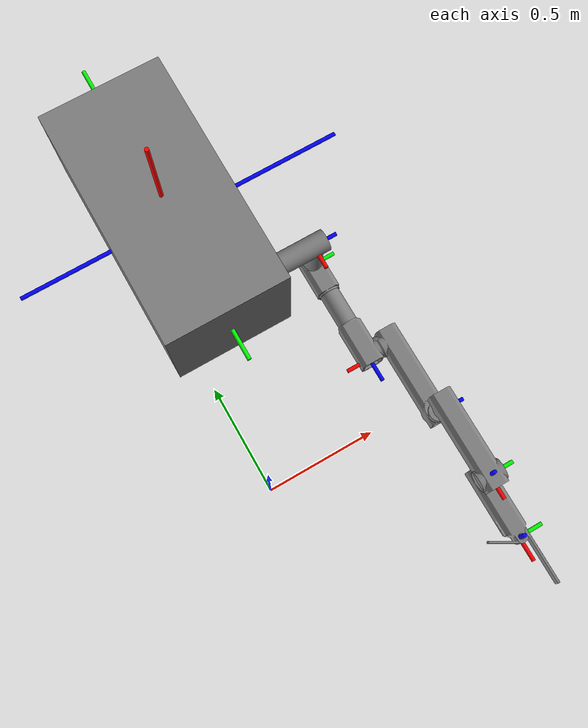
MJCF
<?xml version="1.0"?>
<mujoco model="spacerobot">
    <compiler angle="radian" coordinate="local" eulerseq="xyz" />
    <option cone="elliptic" gravity="0 0 0" impratio="5" timestep="0.01" tolerance="1e-10" />
    <default class="main">
        <joint damping="0" armature="1" />
        <geom condim="4" solimp="0.99 0.99 0.01" solref="0.01 1" />
        <default class="arm1">
            <joint damping="0" />
        </default>
        <default class="arm2">
            <joint damping="0" />
        </default>
    </default>

    <include file="common/visual.xml" />
    <!-- back ground-->
    <include file="common/skybox.xml" />
    <include file="common/materials.xml" />

    <include file="asset_legacy.xml" />

    <worldbody>
        <!--geom name="floor" size="5 5 .2" type="plane" material="grid" /-->
        <camera mode="targetbody" name="cam_to_dockingring" pos="0 0 0" target="chasersat" />
        <light dir="0 0 -1" directional="true" name="light1" pos="0 -1 6" />
        <light dir="0 0 -1" directional="true" name="light2" pos="0 1 6" />

        <body name="chasersat" pos="0.2 1.3 0" euler="0 1.57 0">
            <freejoint name="chasersat:joint" />
            <geom name="chasersat" mass="419.8441" pos="0 0 0"  size="0.3 0.6 0.3" type="box" />
            <site name="b_frame:x" pos="0.0618 0 0" size="0.01 0.818" type="cylinder" rgba="1 0 0 1" euler="0 1.5707963 0" />
            <site name="b_frame:y" pos="0 0.0618 0" size="0.01 0.818" type="cylinder" rgba="0 1 0 1" euler="-1.5707963 0 0" />
            <site name="b_frame:z" pos="0 0 0.0618" size="0.01 0.818" type="cylinder" rgba="0 0 1 1" />
            <body name="arm" pos="0.11855 -0.4 0.29550" euler="0 0 0">
                <include file="arm_smrl.xml" />
            </body>
        </body>
    </worldbody>

    <actuator>

        <general group="1" biasprm="0 0 -100" biastype="affine" ctrllimited="true" ctrlrange="-3.14 3.14" forcelimited="true" forcerange="-150 150" gainprm="100 0 0" joint="arm:shoulder_pan_joint" name="arm:shoulder_pan_T" />
        <general group="1" biasprm="0 0 -100" biastype="affine" ctrllimited="true" ctrlrange="-3.14 3.14" forcelimited="true" forcerange="-150 150" gainprm="100 0 0" joint="arm:shoulder_lift_joint" name="arm:shoulder_lift_T" />
        <general group="1" biasprm="0 0 -100" biastype="affine" ctrllimited="true" ctrlrange="-3.14 3.14" forcelimited="true" forcerange="-150 150" gainprm="100 0 0" joint="arm:elbow_joint" name="arm:elbow_T" />
        <general group="1" biasprm="0 0 -50" biastype="affine" ctrllimited="true" ctrlrange="-3.14 3.14" forcelimited="true" forcerange="-28 28" gainprm="50 0 0" joint="arm:wrist_1_joint" name="arm:wrist_1_T" />
        <general group="1" biasprm="0 0 -50" biastype="affine" ctrllimited="true" ctrlrange="-3.14 3.14" forcelimited="true" forcerange="-28 28" gainprm="50 0 0" joint="arm:wrist_2_joint" name="arm:wrist_2_T" />
        <general group="1" biasprm="0 0 -50" biastype="affine" ctrllimited="true" ctrlrange="-3.14 3.14" forcelimited="true" forcerange="-28 28" gainprm="50 0 0" joint="arm:wrist_3_joint" name="arm:wrist_3_T" />

    </actuator>

    <sensor>
        <actuatorfrc name="shoulder_pan_P_frc" actuator="arm:shoulder_pan_T" />
        <actuatorfrc name="shoulder_lift_P_frc" actuator="arm:shoulder_lift_T" />
        <actuatorfrc name="forearm_P_frc" actuator="arm:elbow_T" />
        <actuatorfrc name="wrist_1_P_frc" actuator="arm:wrist_1_T" />
        <actuatorfrc name="wrist_2_P_frc" actuator="arm:wrist_2_T" />
        <actuatorfrc name="wrist_3_P_frc" actuator="arm:wrist_3_T" />
    </sensor>

</mujoco>

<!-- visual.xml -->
<mujoco>
    <visual>
        <headlight ambient=".4 .4 .4" diffuse=".8 .8 .8" specular="0.1 0.1 0.1" />
        <map znear=".01" />
        <quality shadowsize="2048" />
    </visual>
</mujoco>

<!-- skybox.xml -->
<mujoco>
    <asset>
        <texture name="skybox" type="skybox" builtin="gradient" rgb1=".4 .6 .8" rgb2="0 0 0" width="800" height="800" mark="random" markrgb="1 1 1" />
    </asset>
</mujoco>

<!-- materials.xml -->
<!--
Common textures, colors and materials to be used throughout this suite. Some
materials such as xxx_highlight are activated on occurence of certain events,
for example receiving a positive reward.
-->
<mujoco>
    <asset>
        <texture name="grid" type="2d" builtin="checker" rgb1=".1 .2 .3" rgb2=".2 .3 .4" width="300" height="300" mark="edge" markrgb=".2 .3 .4" />
        <material name="grid" texture="grid" texrepeat="1 1" texuniform="true" reflectance=".2" />
        <material name="self" rgba=".7 .5 .3 1" />
        <material name="self_default" rgba=".7 .5 .3 1" />
        <material name="self_highlight" rgba="0 .5 .3 1" />
        <material name="effector" rgba=".7 .4 .2 1" />
        <material name="effector_default" rgba=".7 .4 .2 1" />
        <material name="effector_highlight" rgba="0 .5 .3 1" />
        <material name="decoration" rgba=".3 .5 .7 1" />
        <material name="eye" rgba="0 .2 1 1" />
        <material name="target" rgba=".6 .3 .3 1" />
        <material name="target_default" rgba=".6 .3 .3 1" />
        <material name="target_highlight" rgba=".6 .3 .3 .4" />
    </asset>
</mujoco>

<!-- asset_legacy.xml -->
<mujoco>
    <asset>
        <mesh name="link2" file="stls/legacy/link2.stl" />
        <mesh name="link3" file="stls/legacy/link3.stl" />
        <mesh name="link4" file="stls/legacy/link4.stl" />
        <mesh name="link5" file="stls/legacy/link5.stl" />
        <mesh name="shaft_base" file="stls/legacy/shaft_base.stl" />
        <mesh name="ee1" file="stls/legacy/ee1.stl" />
        <mesh name="ee2" file="stls/legacy/ee2.stl" />
        <mesh name="shaft1" file="stls/legacy/shaft.stl" />
        <mesh name="shaft2" file="stls/legacy/shaft2.stl" />
        <mesh name="target" file="stls/KOMPSAT-1.stl"/>
        <mesh name="v_base" file="stls/v_base.stl" />
        <mesh name="v_shoulder" file="stls/v_shoulder.stl" />
        <mesh name="v_upperarm" file="stls/v_upperarm.stl" />
        <mesh name="v_forearm" file="stls/v_forearm.stl" />
        <mesh name="v_wrist1" file="stls/v_wrist1.stl" />
        <mesh name="v_wrist2" file="stls/v_wrist2.stl" />
        <mesh name="v_wrist3" file="stls/v_wrist3.stl" />
        <mesh name="cube" file="stls/cube.stl" />
    </asset>
</mujoco>

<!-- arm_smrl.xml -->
<!-- unit quat in mujoco xml is "1 0 0 0"  [ w, x, y, z]-->
<!-- euler sequence xzy-->
<mujoco>
    <body name="base_link" pos="0 0 0" euler="0 0 -1.57">
        <!--base_link is fixed in the base so that the motion of the arm will affect the base-->

        <inertial pos="0 0 0.142137" mass="0.776" diaginertia="0.08871355 0.019580255 0.087662" />
        <site name="base_frame:x" pos="0.0618 0 0" size="0.01 0.0618" type="cylinder" rgba="1 0 0 1" euler="0 1.5707963 0" />
        <site name="base_frame:y" pos="0 0.0618 0" size="0.01 0.0618" type="cylinder" rgba="0 1 0 1" euler="-1.5707963 0 0" />
        <site name="base_frame:z" pos="0 0 0.0618" size="0.01 0.0618" type="cylinder" rgba="0 0 1 1" />

        <!-- joint 1 : a joint creates motion degrees of freedom between the body where it is defined and the body's parent
            joint 1 defines the relation of the motions between link1 and link0-->
        <body name="shoulder_link" pos="0 0 0.240" euler="0 0 0 ">
        <geom name="v_base_link" pos=" 0 0 -0.240" type="mesh" group="1" mesh="shaft_base" euler="1.57 1.57 0" />
        <geom name="v_shoulder_link" type="mesh" group="1" mesh="shaft1" euler="-1.57 0 0" />

        <site name="1_frame:x" pos="0.0618 0 0" size="0.01 0.0618" type="cylinder" rgba="1 0 0 1" euler="0 1.5707963 0" />
        <site name="1_frame:y" pos="0 0.0618 0" size="0.01 0.0618" type="cylinder" rgba="0 1 0 1" euler="-1.5707963 0 0" />
        <site name="1_frame:z" pos="0 0 0.0618" size="0.01 0.0618" type="cylinder" rgba="0 0 1 1" />
        <inertial pos="-0.064465 0 0" mass="3.7" diaginertia="0.0067 0.0064 0.0067" />
            <!-- inertial should be modified-->
            <joint class="arm1" name="arm:shoulder_pan_joint" axis="0 0 1" pos="0 -0.02561 0" />
            <body name="upper_arm_link" pos="0 0.277 0" euler="-1.57 0 3.14">
            <site name="2_frame:x" pos="0.0618 0 0" size="0.01 0.0618" type="cylinder" rgba="1 0 0 1" euler="0 1.5707963 0" />
            <site name="2_frame:y" pos="0 0.0618 0" size="0.01 0.0618" type="cylinder" rgba="0 1 0 1" euler="-1.5707963 0 0" />
            <site name="2_frame:z" pos="0 0 0.0618" size="0.01 0.0618" type="cylinder" rgba="0 0 1 1" />

            <inertial pos="0.0 0 0.0" mass="1" diaginertia="1 1 1" />
            <joint class="arm1" name="arm:shoulder_lift_joint" axis="0 0 1" pos="0 0 0" />
            <geom name="v_upper_arm_link" type="mesh" group="1" mesh="link2" pos="0.064 0 0" euler="0 -1.57 0" />
            <geom name="v_upper_arm_link_1" type="mesh" group="1" mesh="shaft1" pos="-0.145 0 0" euler="0 -1.57 0" />

                <body name="forearm_link" pos="-0.55 0 0" euler="1.57 -1.57 0">
                    <inertial pos="0.11993 0 0.0265" mass="2.275" fullinertia="0.0025 0.0551 0.0546 0 0.0034 0" />
                    <joint class="arm1" name="arm:elbow_joint" pos="0 0 0" axis="0 0 1" />
                    <geom name="v_forearm_link" type="mesh" group="1" mesh="link2" pos="0 0 0.032 " euler="3.14 0 0" />
                    <geom name="v_forearm_link_1" type="mesh" group="1" mesh="shaft2" pos="-0.0906 0 -0.032" euler="0 1.57 0" />
                    <site name="3_frame:x" pos="0.0618 0 0" size="0.01 0.0618" type="cylinder" rgba="1 0 0 1" euler="0 1.5707963 0" />
                    <site name="3_frame:y" pos="0 0.0618 0" size="0.01 0.0618" type="cylinder" rgba="0 1 0 1" euler="-1.5707963 0 0" />
                    <site name="3_frame:z" pos="0 0 0.0618" size="0.01 0.0618" type="cylinder" rgba="0 0 1 1" />
                    <body name="wrist_1_link" pos="-0.162 0 0.390 " euler="0 -1.5707963 -1.5707963">

                    <inertial pos="0.0 0 0.0" mass="1" diaginertia="1 1 1" />
                    <joint class="arm2" name="arm:wrist_1_joint" pos="0 -0.390 0" axis="0 0 1" />
                    <geom name="v_wrist_1_link" type="mesh" group="1" mesh="link3" pos="0 -0.478 -0.025 " euler="-1.57 0 -1.57"/>
                    <geom name="v_wrist_1_link_1" type="mesh" group="1" mesh="shaft2" pos="0.039 0 -0.025" euler="0 1.57 0"/>
                    <site name="4_frame:x" pos="0.0618 0 0" size="0.01 0.0618" type="cylinder" rgba="1 0 0 1" euler="0 1.5707963 0" />
                    <site name="4_frame:y" pos="0 0.0618 0" size="0.01 0.0618" type="cylinder" rgba="0 1 0 1" euler="-1.5707963 0 0" />
                    <site name="4_frame:z" pos="0 0 0.0618" size="0.01 0.0618" type="cylinder" rgba="0 0 1 1" />
                        <body name="wrist_2_link" pos="0.160 0.370 0" euler="1.5707963 1.5707963 0">
                            <inertial pos="0 0.0018 0.01634" mass="1" diaginertia="0.0012 0.0012 0.0009" />
                            <joint class="arm2" name="arm:wrist_2_joint" pos="-0.370 0 0" axis="0 0 1" />
                            <geom name="v_wrist_2_link" type="mesh" group="1" mesh="link4" pos="0 0 0" euler="0 0 0" />
                            <geom name="v_wrist_2_link_1" type="mesh" group="1" mesh="shaft2" pos="0 0 -0.0385 " euler="0 0 0" />
                            <site name="5_frame:x" pos="0.0618 0 0" size="0.01 0.0618" type="cylinder" rgba="1 0 0 1" euler="0 1.5707963 0" />
                            <site name="5_frame:y" pos="0 0.0618 0" size="0.01 0.0618" type="cylinder" rgba="0 1 0 1" euler="-1.5707963 0 0" />
                            <site name="5_frame:z" pos="0 0 0.0618" size="0.01 0.0618" type="cylinder" rgba="0 0 1 1" />

                            <body name="wrist_3_link" pos="0.305 0 -0.160">
                                <inertial pos="0 0 -0.01159" mass="1" diaginertia="0.0000884489143 0.0000884489143 0.000138534912" />
                                <joint class="arm2" name="arm:wrist_3_joint" pos="-0.305 0 0" axis="0 0 1" />
                                <geom name="v_wrist_3_link" type="mesh" group="1" mesh="link5" pos="0 0 0" euler="-1.57 0 0" />
                                <site name="6_frame:x" pos="0.0618 0 0" size="0.01 0.0618" type="cylinder" rgba="1 0 0 1" euler="0 1.5707963 0" />
                                <site name="6_frame:y" pos="0 0.0618 0" size="0.01 0.0618" type="cylinder" rgba="0 1 0 1" euler="-1.5707963 0 0" />
                                <site name="6_frame:z" pos="0 0 0.0618" size="0.01 0.0618" type="cylinder" rgba="0 0 1 1" />
                                <!-- all coordinates are checked but stl files are incorrect + inertia information should be updated -->
                                <!-- also , joint axis and position should be rectified-->
                                <body name="endeffector_1" pos="0 0 0" euler="1.57 0 0 ">
                                    <inertial pos="0 0 0" mass="1" diaginertia="0 0 0"/>
                                    <geom name="ee_1" type="mesh" group="1" mesh="ee1" pos="0 0 0" euler="0 0 0"/>
                                    <body name="endeffector_2" pos="0 0 0">
                                        <inertial pos="0 0 0" mass="1" diaginertia="0 0 0"/>
                                        <geom name="ee_2" type="mesh" group="1" mesh="ee2" pos="0 0 0" euler="0 -2.09439 0"/>
                                    </body>
                                </body>
                            </body>
                        </body>
                    </body>
                </body>
            </body>
        </body>
    </body>
</mujoco>
